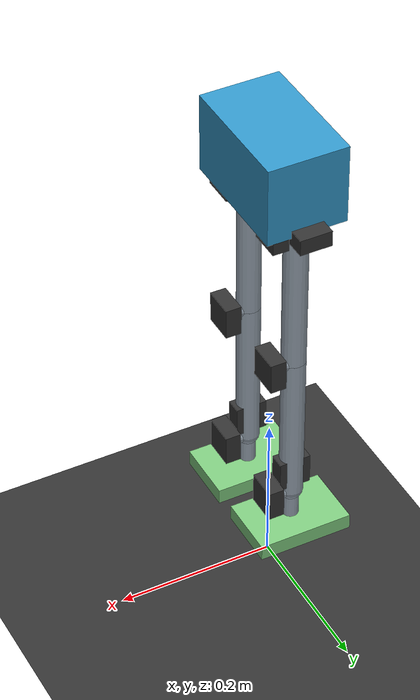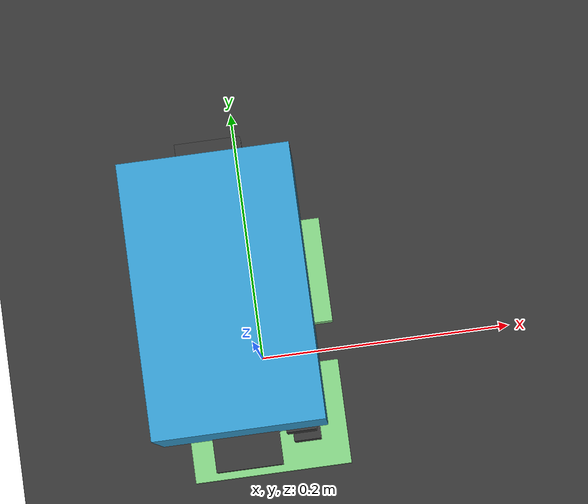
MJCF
<?xml version="1.0" ?>
<mujoco model="12dof_rev_1_0_fixed">

  <compiler angle="radian"/>
  <option integrator="implicitfast" timestep="0.001" gravity="0 0 -9.81"/>

  <default>
    <default class="go2b">
      <joint armature="0.01" damping="0.5" frictionloss="0.1"/>
      <motor ctrllimited="true" ctrlrange="-4 4"/>
      <position ctrllimited="true" ctrlrange="-4 4" kp="1000" kv="50"/>

      <default class="visual">
        <geom type="box" contype="0" conaffinity="0" mass="0.064" rgba="0.2 0.2 0.2 1"/>
      </default>

      <default class="bracket">
        <geom type="capsule" contype="0" conaffinity="0" mass="0.03" rgba="0.6 0.65 0.7 1"/>
      </default>

      <default class="collision">
        <geom type="box" friction="2.0 0.5 0.001" condim="3" contype="1" conaffinity="1"/>
      </default>
    </default>
  </default>

<asset>
    <texture
        type="skybox"
        builtin="gradient"
        rgb1="0.3 0.5 0.7"
        rgb2="0 0 0"
        width="512"
        height="3072"/>

    <texture
        name="groundplane"
        type="2d"
        builtin="checker"
        rgb1="0.25 0.25 0.25"
        rgb2="0.15 0.15 0.15"
        width="512"
        height="512"/>

    <material
        name="groundplane"
        texture="groundplane"
        texrepeat="20 20"
        reflectance="0.1"/>
</asset>

  <worldbody>
    <light pos="0 0 3" dir="0 0 -1" directional="true" diffuse="0.8 0.8 0.8"/>
      <geom
    name="floor"
    type="plane"
    pos="0 0 0"
    size="20 20 0.1"
    material="groundplane"/>

    <body name="torso" pos="0 0 0.6" quat="1 0 0 0" childclass="go2b">
      <freejoint name="floating_base_joint"/>
      <geom class="visual" name="torso_geom" size="0.05 0.08 0.05" mass="1.3" rgba="0.2 0.6 0.8 1"/>

      <geom class="bracket" name="pelvis_bridge" fromto="0 0.055 -0.05  0 -0.055 -0.05" size="0.015"/>
      <geom class="bracket" name="torso_to_pelvis" fromto="0 0 0  0 0 -0.05" size="0.015"/>
      <site name="imu_site" pos="0 0 0" size="0.01"/>

      <body name="left_hip_yaw_link" pos="0 0.055 -0.05">
        <joint name="left_hip_yaw_joint" axis="0 0 1" range="-0.5 0.5"/>
        <geom class="visual" name="l_yaw_motor" size="0.02 0.02 0.01" pos="0 0.025 0"/>
        <geom class="bracket" name="l_yaw_bridge" fromto="0 0 0  0 0.025 0" size="0.01"/>

        <body name="left_hip_roll_link" pos="0 0 0">
          <joint name="left_hip_roll_joint" axis="1 0 0" range="-0.6 0.6"/>
          <geom class="visual" name="l_roll_motor" size="0.02 0.01 0.02" pos="0 0 0.03" euler="0 1.5708 0"/>
          <geom class="bracket" name="l_roll_bridge" fromto="0 0 0  0 0 0.03" size="0.01"/>

          <body name="left_hip_pitch_link" pos="0 0 0">
            <joint name="left_hip_pitch_joint" axis="0 1 0" range="-2.0 2.0"/>
            <geom class="visual" name="l_pitch_motor" size="0.01 0.02 0.02" pos="0.03 0 0" euler="1.5708 0 0"/>
            <geom class="bracket" name="l_pitch_bridge" fromto="0 0 0  0.03 0 0" size="0.01"/>

            <geom class="bracket" name="l_thigh" fromto="0 0 0  0 0 -0.20" size="0.015" mass="0.5"/>

            <body name="left_knee_link" pos="0 0 -0.20">
              <joint name="left_knee_joint" axis="0 1 0" range="-0.1 2.8"/>
              <geom class="visual" name="l_knee_motor" size="0.01 0.02 0.02" pos="0.03 0 0" euler="1.5708 0 0"/>
              <geom class="bracket" name="l_knee_bridge" fromto="0 0 0  0.03 0 0" size="0.01"/>

              <geom class="bracket" name="l_calf" fromto="0 0 0  0 0 -0.20" size="0.015" mass="0.5"/>

              <body name="left_ankle_pitch_link" pos="0 0 -0.20">
                <joint name="left_ankle_pitch_joint" axis="0 1 0" range="-2.0 2.0"/>
                <geom class="visual" name="l_ankle_pitch_motor" size="0.01 0.02 0.02" pos="0.03 0 0" euler="1.5708 0 0"/>
                <geom class="bracket" name="l_ap_bridge" fromto="0 0 0  0.03 0 0" size="0.01"/>

                <body name="left_ankle_roll_link" pos="0 0 0">
                  <joint name="left_ankle_roll_joint" axis="1 0 0" range="-0.6 0.6"/>
                  <geom class="visual" name="l_ankle_roll_motor" size="0.02 0.01 0.02" pos="0 0 0.03" euler="0 1.5708 0"/>
                  <geom class="bracket" name="l_ar_bridge" fromto="0 0 0  0 0 0.03" size="0.01"/>
                  <geom class="bracket" name="l_foot_bridge" fromto="0 0 0  0 0 -0.05" size="0.01"/>

                  <body name="left_foot" pos="0 0 -0.05">
                    <geom class="collision" name="l_foot_geom" size="0.06 0.04 0.01" pos="0 0 0" mass="0.2" rgba="0.5 0.8 0.5 1"/>
                    <site name="foot_L_site" size="0.06 0.04 0.005" pos="0 0 -0.01" rgba="1 0 0 0"/>
                  </body>
                </body>
              </body>
            </body>
          </body>
        </body>
      </body>

      <body name="right_hip_yaw_link" pos="0 -0.055 -0.05">
        <joint name="right_hip_yaw_joint" axis="0 0 1" range="-0.5 0.5"/>
        <geom class="visual" name="r_yaw_motor" size="0.02 0.02 0.01" pos="0 -0.025 0"/>
        <geom class="bracket" name="r_yaw_bridge" fromto="0 0 0  0 -0.025 0" size="0.01"/>

        <body name="right_hip_roll_link" pos="0 0 0">
          <joint name="right_hip_roll_joint" axis="1 0 0" range="-0.6 0.6"/>
          <geom class="visual" name="r_roll_motor" size="0.02 0.01 0.02" pos="0 0 0.03" euler="0 1.5708 0"/>
          <geom class="bracket" name="r_roll_bridge" fromto="0 0 0  0 0 0.03" size="0.01"/>

          <body name="right_hip_pitch_link" pos="0 0 0">
            <joint name="right_hip_pitch_joint" axis="0 1 0" range="-2.0 2.0"/>
            <geom class="visual" name="r_pitch_motor" size="0.01 0.02 0.02" pos="0.03 0 0" euler="1.5708 0 0"/>
            <geom class="bracket" name="r_pitch_bridge" fromto="0 0 0  0.03 0 0" size="0.01"/>

            <geom class="bracket" name="r_thigh" fromto="0 0 0  0 0 -0.20" size="0.015" mass="0.5"/>

            <body name="right_knee_link" pos="0 0 -0.20">
              <joint name="right_knee_joint" axis="0 1 0" range="-0.1 2.8"/>
              <geom class="visual" name="r_knee_motor" size="0.01 0.02 0.02" pos="0.03 0 0" euler="1.5708 0 0"/>
              <geom class="bracket" name="r_knee_bridge" fromto="0 0 0  0.03 0 0" size="0.01"/>

              <geom class="bracket" name="r_calf" fromto="0 0 0  0 0 -0.20" size="0.015" mass="0.5"/>

              <body name="right_ankle_pitch_link" pos="0 0 -0.20">
                <joint name="right_ankle_pitch_joint" axis="0 1 0" range="-2.0 2.0"/>
                <geom class="visual" name="r_ankle_pitch_motor" size="0.01 0.02 0.02" pos="0.03 0 0" euler="1.5708 0 0"/>
                <geom class="bracket" name="r_ap_bridge" fromto="0 0 0  0.03 0 0" size="0.01"/>

                <body name="right_ankle_roll_link" pos="0 0 0">
                  <joint name="right_ankle_roll_joint" axis="1 0 0" range="-0.6 0.6"/>
                  <geom class="visual" name="r_ankle_roll_motor" size="0.02 0.01 0.02" pos="0 0 0.03" euler="0 1.5708 0"/>
                  <geom class="bracket" name="r_ar_bridge" fromto="0 0 0  0 0 0.03" size="0.01"/>
                  <geom class="bracket" name="r_foot_bridge" fromto="0 0 0  0 0 -0.05" size="0.01"/>

                  <body name="right_foot" pos="0 0 -0.05">
                    <geom class="collision" name="r_foot_geom" size="0.06 0.04 0.01" pos="0 0 0" mass="0.2" rgba="0.5 0.8 0.5 1"/>
                    <site name="foot_R_site" size="0.06 0.04 0.005" pos="0 0 -0.01" rgba="1 0 0 0"/>
                  </body>
                </body>
              </body>
            </body>
          </body>
        </body>
      </body>

    </body>
  </worldbody>

  <sensor>
    <framepos name="com_pos" objtype="site" objname="imu_site"/>
    <touch name="touch_L" site="foot_L_site"/>
    <touch name="touch_R" site="foot_R_site"/>
  </sensor>

  <actuator>
    <position class="go2b" name="left_hip_yaw_joint"     joint="left_hip_yaw_joint"/>
    <position class="go2b" name="left_hip_roll_joint"    joint="left_hip_roll_joint"/>
    <position class="go2b" name="left_hip_pitch_joint"   joint="left_hip_pitch_joint"/>
    <position class="go2b" name="left_knee_joint"        joint="left_knee_joint"/>
    <position class="go2b" name="left_ankle_pitch_joint" joint="left_ankle_pitch_joint"/>
    <position class="go2b" name="left_ankle_roll_joint"  joint="left_ankle_roll_joint"/>

    <position class="go2b" name="right_hip_yaw_joint"     joint="right_hip_yaw_joint"/>
    <position class="go2b" name="right_hip_roll_joint"    joint="right_hip_roll_joint"/>
    <position class="go2b" name="right_hip_pitch_joint"   joint="right_hip_pitch_joint"/>
    <position class="go2b" name="right_knee_joint"        joint="right_knee_joint"/>
    <position class="go2b" name="right_ankle_pitch_joint" joint="right_ankle_pitch_joint"/>
    <position class="go2b" name="right_ankle_roll_joint"  joint="right_ankle_roll_joint"/>
  </actuator>

</mujoco>
